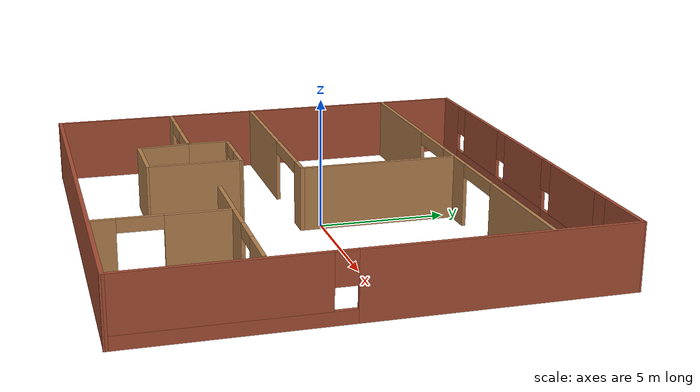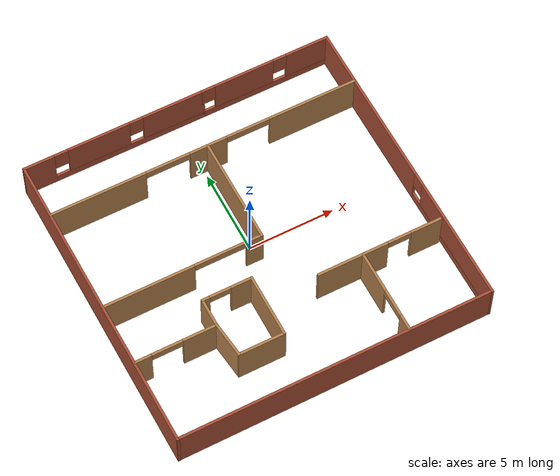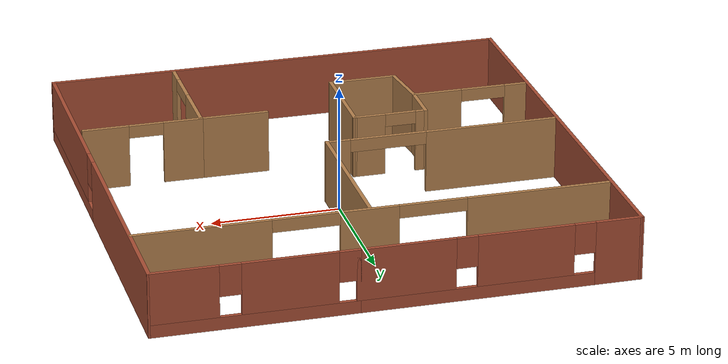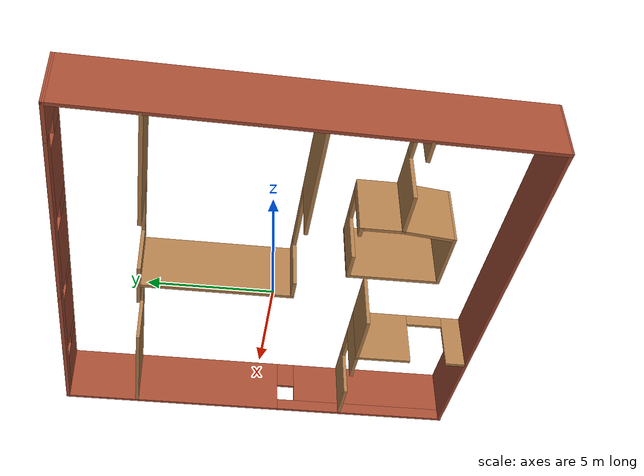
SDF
<?xml version='1.0'?>
<sdf version='1.6'>
  <model name='Test1'>
    <pose frame=''>0.11679 -0.334747 0 0 -0 0</pose>
    <link name='Wall_11'>
      <pose frame=''>-0.02679 5.70475 0 0 -0 0</pose>
      <visual name='Wall_11_Visual_0'>
        <pose frame=''>-6.30646 0 1.25 0 -0 0</pose>
        <geometry>
          <box>
            <size>5.63708 0.15 2.5</size>
          </box>
        </geometry>
        <material>
          <script>
            <uri>file://media/materials/scripts/gazebo.material</uri>
            <name>Gazebo/Wood</name>
          </script>
          <ambient>1 1 1 1</ambient>
        </material>
        <meta>
          <layer>0</layer>
        </meta>
      </visual>
      <collision name='Wall_11_Collision_0'>
        <geometry>
          <box>
            <size>5.63708 0.15 2.5</size>
          </box>
        </geometry>
        <pose frame=''>-6.30646 0 1.25 0 -0 0</pose>
      </collision>
      <visual name='Wall_11_Visual_1'>
        <pose frame=''>0.209144 0 1.25 0 -0 0</pose>
        <geometry>
          <box>
            <size>2.21779 0.15 2.5</size>
          </box>
        </geometry>
        <material>
          <script>
            <uri>file://media/materials/scripts/gazebo.material</uri>
            <name>Gazebo/Wood</name>
          </script>
          <ambient>1 1 1 1</ambient>
        </material>
        <meta>
          <layer>0</layer>
        </meta>
      </visual>
      <collision name='Wall_11_Collision_1'>
        <geometry>
          <box>
            <size>2.21779 0.15 2.5</size>
          </box>
        </geometry>
        <pose frame=''>0.209144 0 1.25 0 -0 0</pose>
      </collision>
      <visual name='Wall_11_Visual_2'>
        <pose frame=''>6.5004 0 1.25 0 -0 0</pose>
        <geometry>
          <box>
            <size>5.2492 0.15 2.5</size>
          </box>
        </geometry>
        <material>
          <script>
            <uri>file://media/materials/scripts/gazebo.material</uri>
            <name>Gazebo/Wood</name>
          </script>
          <ambient>1 1 1 1</ambient>
        </material>
        <meta>
          <layer>0</layer>
        </meta>
      </visual>
      <collision name='Wall_11_Collision_2'>
        <geometry>
          <box>
            <size>5.2492 0.15 2.5</size>
          </box>
        </geometry>
        <pose frame=''>6.5004 0 1.25 0 -0 0</pose>
      </collision>
      <visual name='Wall_11_Visual_3'>
        <pose frame=''>-2.19384 0 2.25 0 -0 0</pose>
        <geometry>
          <box>
            <size>2.58817 0.15 0.5</size>
          </box>
        </geometry>
        <material>
          <script>
            <uri>file://media/materials/scripts/gazebo.material</uri>
            <name>Gazebo/Wood</name>
          </script>
          <ambient>1 1 1 1</ambient>
        </material>
        <meta>
          <layer>0</layer>
        </meta>
      </visual>
      <collision name='Wall_11_Collision_3'>
        <geometry>
          <box>
            <size>2.58817 0.15 0.5</size>
          </box>
        </geometry>
        <pose frame=''>-2.19384 0 2.25 0 -0 0</pose>
      </collision>
      <visual name='Wall_11_Visual_4'>
        <pose frame=''>2.59692 0 2.25 0 -0 0</pose>
        <geometry>
          <box>
            <size>2.55775 0.15 0.5</size>
          </box>
        </geometry>
        <material>
          <script>
            <uri>file://media/materials/scripts/gazebo.material</uri>
            <name>Gazebo/Wood</name>
          </script>
          <ambient>1 1 1 1</ambient>
        </material>
        <meta>
          <layer>0</layer>
        </meta>
      </visual>
      <collision name='Wall_11_Collision_4'>
        <geometry>
          <box>
            <size>2.55775 0.15 0.5</size>
          </box>
        </geometry>
        <pose frame=''>2.59692 0 2.25 0 -0 0</pose>
      </collision>
    </link>
    <link name='Wall_13'>
      <collision name='Wall_13_Collision'>
        <geometry>
          <box>
            <size>6.25 0.15 2.5</size>
          </box>
        </geometry>
        <pose frame=''>0 0 1.25 0 -0 0</pose>
      </collision>
      <visual name='Wall_13_Visual'>
        <pose frame=''>0 0 1.25 0 -0 0</pose>
        <geometry>
          <box>
            <size>6.25 0.15 2.5</size>
          </box>
        </geometry>
        <material>
          <script>
            <uri>file://media/materials/scripts/gazebo.material</uri>
            <name>Gazebo/Wood</name>
          </script>
          <ambient>1 1 1 1</ambient>
        </material>
        <meta>
          <layer>0</layer>
        </meta>
      </visual>
      <pose frame=''>0.155176 2.57031 0 0 -0 -1.5708</pose>
    </link>
    <link name='Wall_15'>
      <pose frame=''>-4.39482 -0.479689 0 0 -0 3.14159</pose>
      <visual name='Wall_15_Visual_0'>
        <pose frame=''>-4.12845 0 1.25 0 -0 0</pose>
        <geometry>
          <box>
            <size>0.99309 0.15 2.5</size>
          </box>
        </geometry>
        <material>
          <script>
            <uri>file://media/materials/scripts/gazebo.material</uri>
            <name>Gazebo/Wood</name>
          </script>
          <ambient>1 1 1 1</ambient>
        </material>
        <meta>
          <layer>0</layer>
        </meta>
      </visual>
      <collision name='Wall_15_Collision_0'>
        <geometry>
          <box>
            <size>0.99309 0.15 2.5</size>
          </box>
        </geometry>
        <pose frame=''>-4.12845 0 1.25 0 -0 0</pose>
      </collision>
      <visual name='Wall_15_Visual_1'>
        <pose frame=''>1.995 0 1.25 0 -0 0</pose>
        <geometry>
          <box>
            <size>5.26 0.15 2.5</size>
          </box>
        </geometry>
        <material>
          <script>
            <uri>file://media/materials/scripts/gazebo.material</uri>
            <name>Gazebo/Wood</name>
          </script>
          <ambient>1 1 1 1</ambient>
        </material>
        <meta>
          <layer>0</layer>
        </meta>
      </visual>
      <collision name='Wall_15_Collision_1'>
        <geometry>
          <box>
            <size>5.26 0.15 2.5</size>
          </box>
        </geometry>
        <pose frame=''>1.995 0 1.25 0 -0 0</pose>
      </collision>
      <visual name='Wall_15_Visual_2'>
        <pose frame=''>-2.13346 0 2.25 0 -0 0</pose>
        <geometry>
          <box>
            <size>2.99691 0.15 0.5</size>
          </box>
        </geometry>
        <material>
          <script>
            <uri>file://media/materials/scripts/gazebo.material</uri>
            <name>Gazebo/Wood</name>
          </script>
          <ambient>1 1 1 1</ambient>
        </material>
        <meta>
          <layer>0</layer>
        </meta>
      </visual>
      <collision name='Wall_15_Collision_2'>
        <geometry>
          <box>
            <size>2.99691 0.15 0.5</size>
          </box>
        </geometry>
        <pose frame=''>-2.13346 0 2.25 0 -0 0</pose>
      </collision>
    </link>
    <link name='Wall_17'>
      <pose frame=''>-6.63136 -4.0899 0 0 -0 0</pose>
      <visual name='Wall_17_Visual_0'>
        <pose frame=''>-1.89446 0 1.25 0 -0 0</pose>
        <geometry>
          <box>
            <size>0.961074 0.15 2.5</size>
          </box>
        </geometry>
        <material>
          <script>
            <uri>file://media/materials/scripts/gazebo.material</uri>
            <name>Gazebo/Wood</name>
          </script>
          <ambient>1 1 1 1</ambient>
        </material>
        <meta>
          <layer>0</layer>
        </meta>
      </visual>
      <collision name='Wall_17_Collision_0'>
        <geometry>
          <box>
            <size>0.961074 0.15 2.5</size>
          </box>
        </geometry>
        <pose frame=''>-1.89446 0 1.25 0 -0 0</pose>
      </collision>
      <visual name='Wall_17_Visual_1'>
        <pose frame=''>1.36944 0 1.25 0 -0 0</pose>
        <geometry>
          <box>
            <size>2.01112 0.15 2.5</size>
          </box>
        </geometry>
        <material>
          <script>
            <uri>file://media/materials/scripts/gazebo.material</uri>
            <name>Gazebo/Wood</name>
          </script>
          <ambient>1 1 1 1</ambient>
        </material>
        <meta>
          <layer>0</layer>
        </meta>
      </visual>
      <collision name='Wall_17_Collision_1'>
        <geometry>
          <box>
            <size>2.01112 0.15 2.5</size>
          </box>
        </geometry>
        <pose frame=''>1.36944 0 1.25 0 -0 0</pose>
      </collision>
      <visual name='Wall_17_Visual_2'>
        <pose frame=''>-0.525023 0 2.25 0 -0 0</pose>
        <geometry>
          <box>
            <size>1.77781 0.15 0.5</size>
          </box>
        </geometry>
        <material>
          <script>
            <uri>file://media/materials/scripts/gazebo.material</uri>
            <name>Gazebo/Wood</name>
          </script>
          <ambient>1 1 1 1</ambient>
        </material>
        <meta>
          <layer>0</layer>
        </meta>
      </visual>
      <collision name='Wall_17_Collision_2'>
        <geometry>
          <box>
            <size>1.77781 0.15 0.5</size>
          </box>
        </geometry>
        <pose frame=''>-0.525023 0 2.25 0 -0 0</pose>
      </collision>
    </link>
    <link name='Wall_18'>
      <collision name='Wall_18_Collision'>
        <geometry>
          <box>
            <size>1.75 0.15 2.5</size>
          </box>
        </geometry>
        <pose frame=''>0 0 1.25 0 -0 0</pose>
      </collision>
      <visual name='Wall_18_Visual'>
        <pose frame=''>0 0 1.25 0 -0 0</pose>
        <geometry>
          <box>
            <size>1.75 0.15 2.5</size>
          </box>
        </geometry>
        <material>
          <script>
            <uri>file://media/materials/scripts/gazebo.material</uri>
            <name>Gazebo/Wood</name>
          </script>
          <ambient>1 1 1 1</ambient>
        </material>
        <meta>
          <layer>0</layer>
        </meta>
      </visual>
      <pose frame=''>-4.33136 -3.2899 0 0 -0 1.5708</pose>
    </link>
    <link name='Wall_19'>
      <pose frame=''>-2.90636 -2.4899 0 0 -0 0</pose>
      <visual name='Wall_19_Visual_0'>
        <pose frame=''>-1.25763 0 1.25 0 -0 0</pose>
        <geometry>
          <box>
            <size>0.484737 0.15 2.5</size>
          </box>
        </geometry>
        <material>
          <script>
            <uri>file://media/materials/scripts/gazebo.material</uri>
            <name>Gazebo/Wood</name>
          </script>
          <ambient>1 1 1 1</ambient>
        </material>
        <meta>
          <layer>0</layer>
        </meta>
      </visual>
      <collision name='Wall_19_Collision_0'>
        <geometry>
          <box>
            <size>0.484737 0.15 2.5</size>
          </box>
        </geometry>
        <pose frame=''>-1.25763 0 1.25 0 -0 0</pose>
      </collision>
      <visual name='Wall_19_Visual_1'>
        <pose frame=''>0.854283 0 1.25 0 -0 0</pose>
        <geometry>
          <box>
            <size>1.29143 0.15 2.5</size>
          </box>
        </geometry>
        <material>
          <script>
            <uri>file://media/materials/scripts/gazebo.material</uri>
            <name>Gazebo/Wood</name>
          </script>
          <ambient>1 1 1 1</ambient>
        </material>
        <meta>
          <layer>0</layer>
        </meta>
      </visual>
      <collision name='Wall_19_Collision_1'>
        <geometry>
          <box>
            <size>1.29143 0.15 2.5</size>
          </box>
        </geometry>
        <pose frame=''>0.854283 0 1.25 0 -0 0</pose>
      </collision>
      <visual name='Wall_19_Visual_2'>
        <pose frame=''>-0.403349 0 2.25 0 -0 0</pose>
        <geometry>
          <box>
            <size>1.22383 0.15 0.5</size>
          </box>
        </geometry>
        <material>
          <script>
            <uri>file://media/materials/scripts/gazebo.material</uri>
            <name>Gazebo/Wood</name>
          </script>
          <ambient>1 1 1 1</ambient>
        </material>
        <meta>
          <layer>0</layer>
        </meta>
      </visual>
      <collision name='Wall_19_Collision_2'>
        <geometry>
          <box>
            <size>1.22383 0.15 0.5</size>
          </box>
        </geometry>
        <pose frame=''>-0.403349 0 2.25 0 -0 0</pose>
      </collision>
    </link>
    <link name='Wall_2'>
      <pose frame=''>-3.83429 8.89025 0 0 -0 0</pose>
      <visual name='Wall_2_Visual_0'>
        <pose frame=''>-4.46281 0 1.25 0 -0 0</pose>
        <geometry>
          <box>
            <size>1.82438 0.15 2.5</size>
          </box>
        </geometry>
        <material>
          <script>
            <uri>file://media/materials/scripts/gazebo.material</uri>
            <name>Gazebo/Bricks</name>
          </script>
          <ambient>1 1 1 1</ambient>
        </material>
        <meta>
          <layer>0</layer>
        </meta>
      </visual>
      <collision name='Wall_2_Collision_0'>
        <geometry>
          <box>
            <size>1.82438 0.15 2.5</size>
          </box>
        </geometry>
        <pose frame=''>-4.46281 0 1.25 0 -0 0</pose>
      </collision>
      <visual name='Wall_2_Visual_1'>
        <pose frame=''>0.91219 0 0.25 0 -0 0</pose>
        <geometry>
          <box>
            <size>8.92562 0.15 0.5</size>
          </box>
        </geometry>
        <material>
          <script>
            <uri>file://media/materials/scripts/gazebo.material</uri>
            <name>Gazebo/Bricks</name>
          </script>
          <ambient>1 1 1 1</ambient>
        </material>
        <meta>
          <layer>0</layer>
        </meta>
      </visual>
      <collision name='Wall_2_Collision_1'>
        <geometry>
          <box>
            <size>8.92562 0.15 0.5</size>
          </box>
        </geometry>
        <pose frame=''>0.91219 0 0.25 0 -0 0</pose>
      </collision>
      <visual name='Wall_2_Visual_2'>
        <pose frame=''>-0.929381 0 1.5 0 -0 0</pose>
        <geometry>
          <box>
            <size>3.64248 0.15 2</size>
          </box>
        </geometry>
        <material>
          <script>
            <uri>file://media/materials/scripts/gazebo.material</uri>
            <name>Gazebo/Bricks</name>
          </script>
          <ambient>1 1 1 1</ambient>
        </material>
        <meta>
          <layer>0</layer>
        </meta>
      </visual>
      <collision name='Wall_2_Collision_2'>
        <geometry>
          <box>
            <size>3.64248 0.15 2</size>
          </box>
        </geometry>
        <pose frame=''>-0.929381 0 1.5 0 -0 0</pose>
      </collision>
      <visual name='Wall_2_Visual_3'>
        <pose frame=''>3.53343 0 1.5 0 -0 0</pose>
        <geometry>
          <box>
            <size>3.68314 0.15 2</size>
          </box>
        </geometry>
        <material>
          <script>
            <uri>file://media/materials/scripts/gazebo.material</uri>
            <name>Gazebo/Bricks</name>
          </script>
          <ambient>1 1 1 1</ambient>
        </material>
        <meta>
          <layer>0</layer>
        </meta>
      </visual>
      <collision name='Wall_2_Collision_3'>
        <geometry>
          <box>
            <size>3.68314 0.15 2</size>
          </box>
        </geometry>
        <pose frame=''>3.53343 0 1.5 0 -0 0</pose>
      </collision>
      <visual name='Wall_2_Visual_4'>
        <pose frame=''>-3.15062 0 1.9 0 -0 0</pose>
        <geometry>
          <box>
            <size>0.8 0.15 1.2</size>
          </box>
        </geometry>
        <material>
          <script>
            <uri>file://media/materials/scripts/gazebo.material</uri>
            <name>Gazebo/Bricks</name>
          </script>
          <ambient>1 1 1 1</ambient>
        </material>
        <meta>
          <layer>0</layer>
        </meta>
      </visual>
      <collision name='Wall_2_Collision_4'>
        <geometry>
          <box>
            <size>0.8 0.15 1.2</size>
          </box>
        </geometry>
        <pose frame=''>-3.15062 0 1.9 0 -0 0</pose>
      </collision>
      <visual name='Wall_2_Visual_5'>
        <pose frame=''>1.29186 0 1.9 0 -0 0</pose>
        <geometry>
          <box>
            <size>0.8 0.15 1.2</size>
          </box>
        </geometry>
        <material>
          <script>
            <uri>file://media/materials/scripts/gazebo.material</uri>
            <name>Gazebo/Bricks</name>
          </script>
          <ambient>1 1 1 1</ambient>
        </material>
        <meta>
          <layer>0</layer>
        </meta>
      </visual>
      <collision name='Wall_2_Collision_5'>
        <geometry>
          <box>
            <size>0.8 0.15 1.2</size>
          </box>
        </geometry>
        <pose frame=''>1.29186 0 1.9 0 -0 0</pose>
      </collision>
    </link>
    <link name='Wall_20'>
      <collision name='Wall_20_Collision'>
        <geometry>
          <box>
            <size>3.74781 0.15 2.5</size>
          </box>
        </geometry>
        <pose frame=''>0 0 1.25 0 -0 0</pose>
      </collision>
      <visual name='Wall_20_Visual'>
        <pose frame=''>0 0 1.25 0 -0 0</pose>
        <geometry>
          <box>
            <size>3.74781 0.15 2.5</size>
          </box>
        </geometry>
        <material>
          <script>
            <uri>file://media/materials/scripts/gazebo.material</uri>
            <name>Gazebo/Wood</name>
          </script>
          <ambient>1 1 1 1</ambient>
        </material>
        <meta>
          <layer>0</layer>
        </meta>
      </visual>
      <pose frame=''>-1.48477 -4.2888 0 0 -0 -1.5727</pose>
    </link>
    <link name='Wall_21'>
      <collision name='Wall_21_Collision'>
        <geometry>
          <box>
            <size>2.75 0.15 2.5</size>
          </box>
        </geometry>
        <pose frame=''>0 0 1.25 0 -0 0</pose>
      </collision>
      <visual name='Wall_21_Visual'>
        <pose frame=''>0 0 1.25 0 -0 0</pose>
        <geometry>
          <box>
            <size>2.75 0.15 2.5</size>
          </box>
        </geometry>
        <material>
          <script>
            <uri>file://media/materials/scripts/gazebo.material</uri>
            <name>Gazebo/Wood</name>
          </script>
          <ambient>1 1 1 1</ambient>
        </material>
        <meta>
          <layer>0</layer>
        </meta>
      </visual>
      <pose frame=''>-2.78819 -6.10781 0 0 -0 3.14159</pose>
    </link>
    <link name='Wall_22'>
      <collision name='Wall_22_Collision'>
        <geometry>
          <box>
            <size>2.16254 0.15 2.5</size>
          </box>
        </geometry>
        <pose frame=''>0 0 1.25 0 -0 0</pose>
      </collision>
      <visual name='Wall_22_Visual'>
        <pose frame=''>0 0 1.25 0 -0 0</pose>
        <geometry>
          <box>
            <size>2.16254 0.15 2.5</size>
          </box>
        </geometry>
        <material>
          <script>
            <uri>file://media/materials/scripts/gazebo.material</uri>
            <name>Gazebo/Wood</name>
          </script>
          <ambient>1 1 1 1</ambient>
        </material>
        <meta>
          <layer>0</layer>
        </meta>
      </visual>
      <pose frame=''>-4.20977 -5.0888 0 0 -0 1.69192</pose>
    </link>
    <link name='Wall_24'>
      <pose frame=''>6.58498 -3.92939 0 0 -0 3.14159</pose>
      <visual name='Wall_24_Visual_0'>
        <pose frame=''>-1.45775 0 1.25 0 -0 0</pose>
        <geometry>
          <box>
            <size>1.83451 0.15 2.5</size>
          </box>
        </geometry>
        <material>
          <script>
            <uri>file://media/materials/scripts/gazebo.material</uri>
            <name>Gazebo/Wood</name>
          </script>
          <ambient>1 1 1 1</ambient>
        </material>
        <meta>
          <layer>0</layer>
        </meta>
      </visual>
      <collision name='Wall_24_Collision_0'>
        <geometry>
          <box>
            <size>1.83451 0.15 2.5</size>
          </box>
        </geometry>
        <pose frame=''>-1.45775 0 1.25 0 -0 0</pose>
      </collision>
      <visual name='Wall_24_Visual_1'>
        <pose frame=''>1.59336 0 1.25 0 -0 0</pose>
        <geometry>
          <box>
            <size>1.56329 0.15 2.5</size>
          </box>
        </geometry>
        <material>
          <script>
            <uri>file://media/materials/scripts/gazebo.material</uri>
            <name>Gazebo/Wood</name>
          </script>
          <ambient>1 1 1 1</ambient>
        </material>
        <meta>
          <layer>0</layer>
        </meta>
      </visual>
      <collision name='Wall_24_Collision_1'>
        <geometry>
          <box>
            <size>1.56329 0.15 2.5</size>
          </box>
        </geometry>
        <pose frame=''>1.59336 0 1.25 0 -0 0</pose>
      </collision>
      <visual name='Wall_24_Visual_2'>
        <pose frame=''>0.135609 0 2.25 0 -0 0</pose>
        <geometry>
          <box>
            <size>1.3522 0.15 0.5</size>
          </box>
        </geometry>
        <material>
          <script>
            <uri>file://media/materials/scripts/gazebo.material</uri>
            <name>Gazebo/Wood</name>
          </script>
          <ambient>1 1 1 1</ambient>
        </material>
        <meta>
          <layer>0</layer>
        </meta>
      </visual>
      <collision name='Wall_24_Collision_2'>
        <geometry>
          <box>
            <size>1.3522 0.15 0.5</size>
          </box>
        </geometry>
        <pose frame=''>0.135609 0 2.25 0 -0 0</pose>
      </collision>
    </link>
    <link name='Wall_25'>
      <pose frame=''>4.28498 -6.35439 0 0 -0 -1.5708</pose>
      <visual name='Wall_25_Visual_0'>
        <pose frame=''>-1.2629 0 1.25 0 -0 0</pose>
        <geometry>
          <box>
            <size>2.4742 0.15 2.5</size>
          </box>
        </geometry>
        <material>
          <script>
            <uri>file://media/materials/scripts/gazebo.material</uri>
            <name>Gazebo/Wood</name>
          </script>
          <ambient>1 1 1 1</ambient>
        </material>
        <meta>
          <layer>0</layer>
        </meta>
      </visual>
      <collision name='Wall_25_Collision_0'>
        <geometry>
          <box>
            <size>2.4742 0.15 2.5</size>
          </box>
        </geometry>
        <pose frame=''>-1.2629 0 1.25 0 -0 0</pose>
      </collision>
      <visual name='Wall_25_Visual_1'>
        <pose frame=''>2.0462 0 1.25 0 -0 0</pose>
        <geometry>
          <box>
            <size>0.907593 0.15 2.5</size>
          </box>
        </geometry>
        <material>
          <script>
            <uri>file://media/materials/scripts/gazebo.material</uri>
            <name>Gazebo/Wood</name>
          </script>
          <ambient>1 1 1 1</ambient>
        </material>
        <meta>
          <layer>0</layer>
        </meta>
      </visual>
      <collision name='Wall_25_Collision_1'>
        <geometry>
          <box>
            <size>0.907593 0.15 2.5</size>
          </box>
        </geometry>
        <pose frame=''>2.0462 0 1.25 0 -0 0</pose>
      </collision>
      <visual name='Wall_25_Visual_2'>
        <pose frame=''>0.783304 0 2.25 0 -0 0</pose>
        <geometry>
          <box>
            <size>1.6182 0.15 0.5</size>
          </box>
        </geometry>
        <material>
          <script>
            <uri>file://media/materials/scripts/gazebo.material</uri>
            <name>Gazebo/Wood</name>
          </script>
          <ambient>1 1 1 1</ambient>
        </material>
        <meta>
          <layer>0</layer>
        </meta>
      </visual>
      <collision name='Wall_25_Collision_2'>
        <geometry>
          <box>
            <size>1.6182 0.15 0.5</size>
          </box>
        </geometry>
        <pose frame=''>0.783304 0 2.25 0 -0 0</pose>
      </collision>
    </link>
    <link name='Wall_28'>
      <collision name='Wall_28_Collision'>
        <geometry>
          <box>
            <size>2.75 0.15 2.5</size>
          </box>
        </geometry>
        <pose frame=''>0 0 1.25 0 -0 0</pose>
      </collision>
      <visual name='Wall_28_Visual'>
        <pose frame=''>0 0 1.25 0 -0 0</pose>
        <geometry>
          <box>
            <size>2.75 0.15 2.5</size>
          </box>
        </geometry>
        <material>
          <script>
            <uri>file://media/materials/scripts/gazebo.material</uri>
            <name>Gazebo/Wood</name>
          </script>
          <ambient>1 1 1 1</ambient>
        </material>
        <meta>
          <layer>0</layer>
        </meta>
      </visual>
      <pose frame=''>2.98498 -3.92939 0 0 -0 3.14159</pose>
    </link>
    <link name='Wall_4'>
      <pose frame=''>5.26571 8.89025 0 0 -0 0</pose>
      <visual name='Wall_4_Visual_0'>
        <pose frame=''>-3.8728 0 1.25 0 -0 0</pose>
        <geometry>
          <box>
            <size>0.004392 0.15 2.5</size>
          </box>
        </geometry>
        <material>
          <script>
            <uri>file://media/materials/scripts/gazebo.material</uri>
            <name>Gazebo/Bricks</name>
          </script>
          <ambient>1 1 1 1</ambient>
        </material>
        <meta>
          <layer>0</layer>
        </meta>
      </visual>
      <collision name='Wall_4_Collision_0'>
        <geometry>
          <box>
            <size>0.004392 0.15 2.5</size>
          </box>
        </geometry>
        <pose frame=''>-3.8728 0 1.25 0 -0 0</pose>
      </collision>
      <visual name='Wall_4_Visual_1'>
        <pose frame=''>0.002196 0 0.25 0 -0 0</pose>
        <geometry>
          <box>
            <size>7.74561 0.15 0.5</size>
          </box>
        </geometry>
        <material>
          <script>
            <uri>file://media/materials/scripts/gazebo.material</uri>
            <name>Gazebo/Bricks</name>
          </script>
          <ambient>1 1 1 1</ambient>
        </material>
        <meta>
          <layer>0</layer>
        </meta>
      </visual>
      <collision name='Wall_4_Collision_1'>
        <geometry>
          <box>
            <size>7.74561 0.15 0.5</size>
          </box>
        </geometry>
        <pose frame=''>0.002196 0 0.25 0 -0 0</pose>
      </collision>
      <visual name='Wall_4_Visual_2'>
        <pose frame=''>-1.2931 0 1.5 0 -0 0</pose>
        <geometry>
          <box>
            <size>3.55503 0.15 2</size>
          </box>
        </geometry>
        <material>
          <script>
            <uri>file://media/materials/scripts/gazebo.material</uri>
            <name>Gazebo/Bricks</name>
          </script>
          <ambient>1 1 1 1</ambient>
        </material>
        <meta>
          <layer>0</layer>
        </meta>
      </visual>
      <collision name='Wall_4_Collision_2'>
        <geometry>
          <box>
            <size>3.55503 0.15 2</size>
          </box>
        </geometry>
        <pose frame=''>-1.2931 0 1.5 0 -0 0</pose>
      </collision>
      <visual name='Wall_4_Visual_3'>
        <pose frame=''>2.57971 0 1.5 0 -0 0</pose>
        <geometry>
          <box>
            <size>2.59058 0.15 2</size>
          </box>
        </geometry>
        <material>
          <script>
            <uri>file://media/materials/scripts/gazebo.material</uri>
            <name>Gazebo/Bricks</name>
          </script>
          <ambient>1 1 1 1</ambient>
        </material>
        <meta>
          <layer>0</layer>
        </meta>
      </visual>
      <collision name='Wall_4_Collision_3'>
        <geometry>
          <box>
            <size>2.59058 0.15 2</size>
          </box>
        </geometry>
        <pose frame=''>2.57971 0 1.5 0 -0 0</pose>
      </collision>
      <visual name='Wall_4_Visual_4'>
        <pose frame=''>-3.47061 0 1.9 0 -0 0</pose>
        <geometry>
          <box>
            <size>0.8 0.15 1.2</size>
          </box>
        </geometry>
        <material>
          <script>
            <uri>file://media/materials/scripts/gazebo.material</uri>
            <name>Gazebo/Bricks</name>
          </script>
          <ambient>1 1 1 1</ambient>
        </material>
        <meta>
          <layer>0</layer>
        </meta>
      </visual>
      <collision name='Wall_4_Collision_4'>
        <geometry>
          <box>
            <size>0.8 0.15 1.2</size>
          </box>
        </geometry>
        <pose frame=''>-3.47061 0 1.9 0 -0 0</pose>
      </collision>
      <visual name='Wall_4_Visual_5'>
        <pose frame=''>0.884418 0 1.9 0 -0 0</pose>
        <geometry>
          <box>
            <size>0.8 0.15 1.2</size>
          </box>
        </geometry>
        <material>
          <script>
            <uri>file://media/materials/scripts/gazebo.material</uri>
            <name>Gazebo/Bricks</name>
          </script>
          <ambient>1 1 1 1</ambient>
        </material>
        <meta>
          <layer>0</layer>
        </meta>
      </visual>
      <collision name='Wall_4_Collision_5'>
        <geometry>
          <box>
            <size>0.8 0.15 1.2</size>
          </box>
        </geometry>
        <pose frame=''>0.884418 0 1.9 0 -0 0</pose>
      </collision>
    </link>
    <link name='Wall_7'>
      <pose frame=''>9.10021 -0 0 0 -0 -1.56692</pose>
      <visual name='Wall_7_Visual_0'>
        <pose frame=''>-4.00946 0 1.25 0 -0 0</pose>
        <geometry>
          <box>
            <size>9.91171 0.15 2.5</size>
          </box>
        </geometry>
        <material>
          <script>
            <uri>file://media/materials/scripts/gazebo.material</uri>
            <name>Gazebo/Bricks</name>
          </script>
          <ambient>1 1 1 1</ambient>
        </material>
        <meta>
          <layer>0</layer>
        </meta>
      </visual>
      <collision name='Wall_7_Collision_0'>
        <geometry>
          <box>
            <size>9.91171 0.15 2.5</size>
          </box>
        </geometry>
        <pose frame=''>-4.00946 0 1.25 0 -0 0</pose>
      </collision>
      <visual name='Wall_7_Visual_1'>
        <pose frame=''>4.95586 0 0.25 0 -0 0</pose>
        <geometry>
          <box>
            <size>8.01892 0.15 0.5</size>
          </box>
        </geometry>
        <material>
          <script>
            <uri>file://media/materials/scripts/gazebo.material</uri>
            <name>Gazebo/Bricks</name>
          </script>
          <ambient>1 1 1 1</ambient>
        </material>
        <meta>
          <layer>0</layer>
        </meta>
      </visual>
      <collision name='Wall_7_Collision_1'>
        <geometry>
          <box>
            <size>8.01892 0.15 0.5</size>
          </box>
        </geometry>
        <pose frame=''>4.95586 0 0.25 0 -0 0</pose>
      </collision>
      <visual name='Wall_7_Visual_2'>
        <pose frame=''>5.35586 0 1.5 0 -0 0</pose>
        <geometry>
          <box>
            <size>7.21892 0.15 2</size>
          </box>
        </geometry>
        <material>
          <script>
            <uri>file://media/materials/scripts/gazebo.material</uri>
            <name>Gazebo/Bricks</name>
          </script>
          <ambient>1 1 1 1</ambient>
        </material>
        <meta>
          <layer>0</layer>
        </meta>
      </visual>
      <collision name='Wall_7_Collision_2'>
        <geometry>
          <box>
            <size>7.21892 0.15 2</size>
          </box>
        </geometry>
        <pose frame=''>5.35586 0 1.5 0 -0 0</pose>
      </collision>
      <visual name='Wall_7_Visual_3'>
        <pose frame=''>1.3464 0 1.9 0 -0 0</pose>
        <geometry>
          <box>
            <size>0.8 0.15 1.2</size>
          </box>
        </geometry>
        <material>
          <script>
            <uri>file://media/materials/scripts/gazebo.material</uri>
            <name>Gazebo/Bricks</name>
          </script>
          <ambient>1 1 1 1</ambient>
        </material>
        <meta>
          <layer>0</layer>
        </meta>
      </visual>
      <collision name='Wall_7_Collision_3'>
        <geometry>
          <box>
            <size>0.8 0.15 1.2</size>
          </box>
        </geometry>
        <pose frame=''>1.3464 0 1.9 0 -0 0</pose>
      </collision>
    </link>
    <link name='Wall_8'>
      <collision name='Wall_8_Collision'>
        <geometry>
          <box>
            <size>18.25 0.15 2.5</size>
          </box>
        </geometry>
        <pose frame=''>0 0 1.25 0 -0 0</pose>
      </collision>
      <visual name='Wall_8_Visual'>
        <pose frame=''>0 0 1.25 0 -0 0</pose>
        <geometry>
          <box>
            <size>18.25 0.15 2.5</size>
          </box>
        </geometry>
        <material>
          <script>
            <uri>file://media/materials/scripts/gazebo.material</uri>
            <name>Gazebo/Bricks</name>
          </script>
          <ambient>1 1 1 1</ambient>
        </material>
        <meta>
          <layer>0</layer>
        </meta>
      </visual>
      <pose frame=''>0.08471 -8.87875 0 0 -0 3.14159</pose>
    </link>
    <link name='Wall_9'>
      <collision name='Wall_9_Collision'>
        <geometry>
          <box>
            <size>17.9313 0.15 2.5</size>
          </box>
        </geometry>
        <pose frame=''>0 0 1.25 0 -0 0</pose>
      </collision>
      <visual name='Wall_9_Visual'>
        <pose frame=''>0 0 1.25 0 -0 0</pose>
        <geometry>
          <box>
            <size>17.9313 0.15 2.5</size>
          </box>
        </geometry>
        <material>
          <script>
            <uri>file://media/materials/scripts/gazebo.material</uri>
            <name>Gazebo/Bricks</name>
          </script>
          <ambient>1 1 1 1</ambient>
        </material>
        <meta>
          <layer>0</layer>
        </meta>
      </visual>
      <pose frame=''>-9.04979 -0 0 0 -0 1.5803</pose>
    </link>
    <static>1</static>
  </model>
</sdf>
